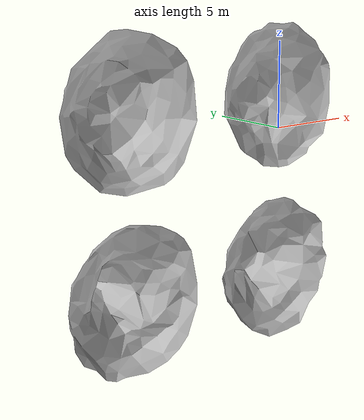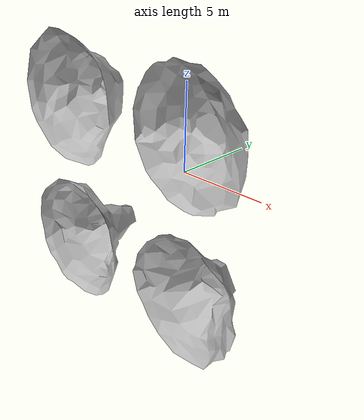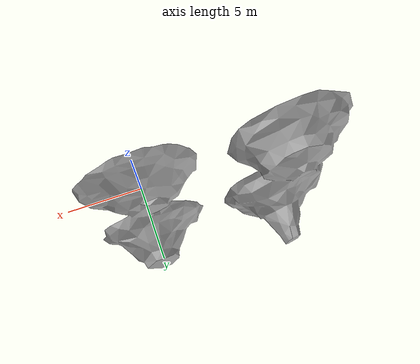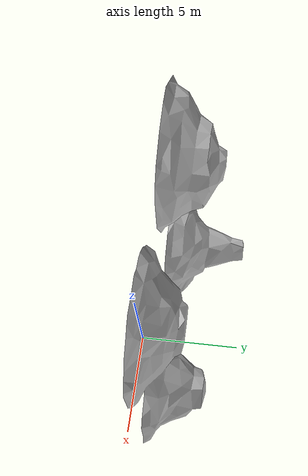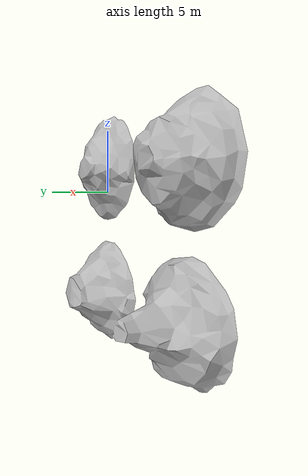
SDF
<?xml version="1.0" ?>
<sdf version="1.6">
  <model name="mountains">
    <static>true</static>
    <link name="link">
      <collision name="collision">
        <geometry>
          <mesh>
            <scale>1 1 1</scale>
            <uri>model://mountains/meshes/mountains.obj</uri>
          </mesh>
        </geometry>
      </collision>
      <visual name="visual">
        <geometry>
          <mesh>
            <scale>1 1 1</scale>
            <uri>model://mountains/meshes/mountains.obj</uri>
          </mesh>
        </geometry>
      </visual>
    </link>
  </model>
</sdf>
